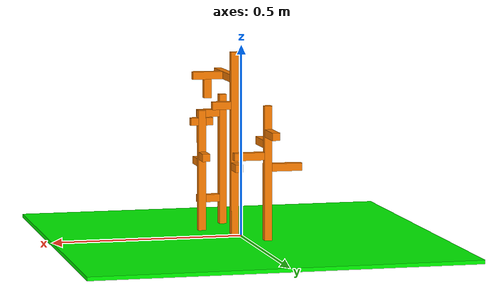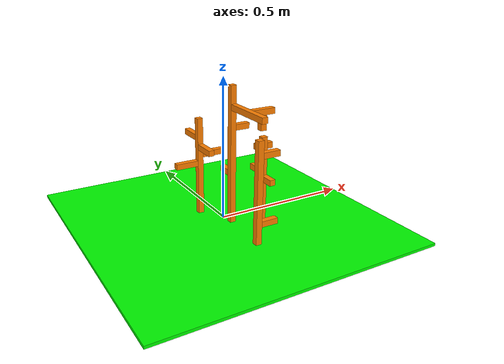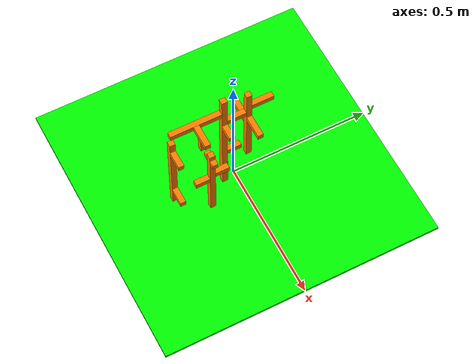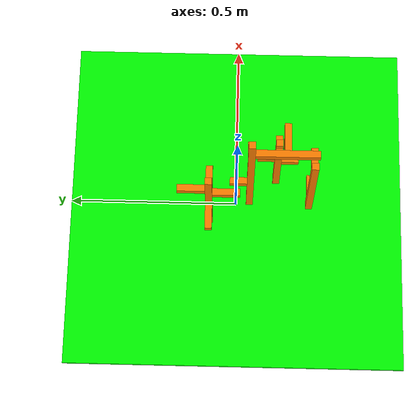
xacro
<?xml version="1.0"?>
<robot xmlns:xacro="http://www.ros.org/wiki/xacro" name="scene_mingruiyu_0">
  <xacro:property name="PI" value="3.1415926535897931" />

  <!-- Include statements for macros -->
  <xacro:include filename="square_pole_macro.xacro"/>

  <!-- GROUND PLANE -->
  <link name="ground_plane">
    <visual>
      <geometry>
        <box size="1 1 0.01"/>
      </geometry>
      <origin xyz="0 0 -0.005" rpy="0 0 0"/>
      <material name="green"/>
    </visual>
    <collision>
      <geometry>
        <box size="1 1 0.01"/>
      </geometry>
      <origin xyz="0 0 -0.005" rpy="0 0 0"/>
    </collision>
  </link>

  <!-- OBSTACLES (created from square poles) -->

  <!-- ====================== POLE 1 : BEGIN ====================== -->
  <!-- MAIN SHAFT -->
  <!-- Creted link has the name: prefix+"_root_link" -->
  <xacro:square_pole prefix="pole_1" parent_link="ground_plane" length="0.35" thickness="0.02">
    <origin xyz="0.0 -0.22 0.0" rpy="0 0 0"/>
  </xacro:square_pole>

  <!-- ATTACHMENT 1. TOWARDS +X AXIS  -->
  <!-- Creted link has the name: prefix+"_root_link" -->
  <xacro:square_pole prefix="pole_1_attachment_1" parent_link="pole_1_root_link" length="0.06" thickness="0.02">
    <origin xyz="0.01 0.0 0.30" rpy="${PI/2.0} 0 ${PI/2.0}"/>
  </xacro:square_pole>

  <!-- ATTACHMENT 2. TOWARDS +X AXIS  -->
  <!-- Creted link has the name: prefix+"_root_link" -->
  <xacro:square_pole prefix="pole_1_attachment_2" parent_link="pole_1_root_link" length="0.06" thickness="0.02">
    <origin xyz="0.01 0.0 0.07" rpy="${PI/2.0} 0 ${PI/2.0}"/>
  </xacro:square_pole>
  <!-- ====================== POLE 1 : END ====================== -->

  <!-- ====================== POLE 2 : BEGIN ====================== -->
  <!-- MAIN SHAFT -->
  <!-- Creted link has the name: prefix+"_root_link" -->
  <xacro:square_pole prefix="pole_2" parent_link="ground_plane" length="0.32" thickness="0.02">
    <origin xyz="0.08 -0.12 0.0" rpy="0 0 0"/>
  </xacro:square_pole>

  <!-- ATTACHMENT 1. TOWARDS +X AXIS  -->
  <!-- Creted link has the name: prefix+"_root_link" -->
  <xacro:square_pole prefix="pole_2_attachment_1" parent_link="pole_2_root_link" length="0.02" thickness="0.02">
    <origin xyz="0.01 0.0 0.29" rpy="${PI/2.0} 0 ${PI/2.0}"/>
  </xacro:square_pole>

  <!-- ATTACHMENT 2. TOWARDS -X AXIS  -->
  <!-- Creted link has the name: prefix+"_root_link" -->
  <xacro:square_pole prefix="pole_2_attachment_2" parent_link="pole_2_root_link" length="0.02" thickness="0.02">
    <origin xyz="-0.01 0.0 0.29" rpy="${PI/2.0} 0 ${3*PI/2.0}"/>
  </xacro:square_pole>

  <!-- ATTACHMENT 3. TOWARDS +Y AXIS  -->
  <!-- Creted link has the name: prefix+"_root_link" -->
  <xacro:square_pole prefix="pole_2_attachment_3" parent_link="pole_2_root_link" length="0.05" thickness="0.02">
    <origin xyz="0.0 0.01 0.20" rpy="${PI/2.0} 0 ${PI}"/>
  </xacro:square_pole>

  <!-- ATTACHMENT 4. TOWARDS -Y AXIS  -->
  <!-- Creted link has the name: prefix+"_root_link" -->
  <xacro:square_pole prefix="pole_2_attachment_4" parent_link="pole_2_root_link" length="0.05" thickness="0.02">
    <origin xyz="0 -0.01 0.18" rpy="${PI/2.0} 0 0"/>
  </xacro:square_pole>
  <!-- ====================== POLE 2 : END ====================== -->

  <!-- ====================== POLE 3 : BEGIN ====================== -->
  <!-- MAIN SHAFT -->
  <!-- Creted link has the name: prefix+"_root_link" -->
  <xacro:square_pole prefix="pole_3" parent_link="ground_plane" length="0.48" thickness="0.02">
    <origin xyz="0.01 -0.04 0.0" rpy="0 0 0"/>
  </xacro:square_pole>

  <!-- ATTACHMENT 1. TOWARDS -Y AXIS  -->
  <!-- Creted link has the name: prefix+"_root_link" -->
  <xacro:square_pole prefix="pole_3_attachment_1" parent_link="pole_3_root_link" length="0.18" thickness="0.02">
    <origin xyz="0 -0.01 0.41" rpy="${PI/2.0} 0 0"/>
  </xacro:square_pole>

  <!-- ATTACHMENT 1.1 TOWARDS +X AXIS wrt to ATTACHMENT 1 -->
  <!-- Creted link has the name: prefix+"_root_link" -->
  <xacro:square_pole prefix="pole_3_attachment_1_1" parent_link="pole_3_attachment_1_root_link" length="0.08" thickness="0.02">
    <origin xyz="0.01 0.0 0.09" rpy="0 ${PI/2.0} 0"/>
  </xacro:square_pole>

  <!-- ATTACHMENT 1.1.1 TOWARDS -Y AXIS wrt to ATTACHMENT 1.1 -->
  <!-- Creted link has the name: prefix+"_root_link" -->
  <xacro:square_pole prefix="pole_3_attachment_1_1_1" parent_link="pole_3_attachment_1_1_root_link" length="0.05" thickness="0.02">
    <origin xyz="0 -0.01 0.04" rpy="${PI/2.0} 0 0"/>
  </xacro:square_pole>

  <!-- ATTACHMENT 2. TOWARDS +X AXIS -->
  <!-- Creted link has the name: prefix+"_root_link" -->
  <xacro:square_pole prefix="pole_3_attachment_2" parent_link="pole_3_root_link" length="0.05" thickness="0.02">
    <origin xyz="0.01 0.0 0.34" rpy="${PI/2.0} 0 ${PI/2.0}"/>
  </xacro:square_pole>

  <!-- ATTACHMENT 3. TOWARDS +Y AXIS  -->
  <!-- Creted link has the name: prefix+"_root_link" -->
  <xacro:square_pole prefix="pole_3_attachment_3" parent_link="pole_3_root_link" length="0.05" thickness="0.02">
    <origin xyz="0.0 0.01 0.18" rpy="${PI/2.0} 0 ${PI}"/>
  </xacro:square_pole>
  <!-- ====================== POLE 3 : END ====================== -->

  <!-- ====================== POLE 4 : BEGIN ====================== -->
  <!-- MAIN SHAFT -->
  <!-- Creted link has the name: prefix+"_root_link" -->
  <xacro:square_pole prefix="pole_4" parent_link="ground_plane" length="0.35" thickness="0.02">
    <origin xyz="-0.05 0.08 0.0" rpy="0 0 0"/>
  </xacro:square_pole>

  <!-- ATTACHMENT 1. TOWARDS -Y AXIS  -->
  <!-- Creted link has the name: prefix+"_root_link" -->
  <xacro:square_pole prefix="pole_4_attachment_1" parent_link="pole_4_root_link" length="0.08" thickness="0.02">
    <origin xyz="0 -0.01 0.25" rpy="${PI/2.0} 0 0"/>
  </xacro:square_pole>

  <!-- ATTACHMENT 2. TOWARDS +X AXIS -->
  <!-- Creted link has the name: prefix+"_root_link" -->
  <xacro:square_pole prefix="pole_4_attachment_2" parent_link="pole_4_root_link" length="0.08" thickness="0.02">
    <origin xyz="0.01 0.0 0.22" rpy="${PI/2.0} 0 ${PI/2.0}"/>
  </xacro:square_pole>

  <!-- ATTACHMENT 3. TOWARDS +Y AXIS  -->
  <!-- Creted link has the name: prefix+"_root_link" -->
  <xacro:square_pole prefix="pole_4_attachment_3" parent_link="pole_4_root_link" length="0.08" thickness="0.02">
    <origin xyz="0.0 0.01 0.28" rpy="${PI/2.0} 0 ${PI}"/>
  </xacro:square_pole>

  <!-- ATTACHMENT 4. TOWARDS -X AXIS -->
  <!-- Creted link has the name: prefix+"_root_link" -->
  <xacro:square_pole prefix="pole_4_attachment_4" parent_link="pole_4_root_link" length="0.08" thickness="0.02">
    <origin xyz="-0.01 0.0 0.19" rpy="${PI/2.0} 0 ${3*PI/2.0}"/>
  </xacro:square_pole>
  <!-- ====================== POLE 4 : END ====================== -->

</robot>

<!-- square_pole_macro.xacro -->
<robot xmlns:xacro="http://www.ros.org/wiki/xacro">
    <xacro:include filename="materials.xacro"/>

    <xacro:macro name="square_pole" params="prefix parent_link length thickness *root_pose">
        <link name="${prefix}_root_link">
            <visual>
                <geometry>
                    <box size="${thickness} ${thickness} ${length}"/>
                </geometry>
                <origin xyz="0 0 ${length / 2.0}" rpy="0 0 0"/>
                <material name="orange"/>
            </visual>
            <collision>
                <geometry>
                    <box size="${thickness} ${thickness} ${length}"/>
                </geometry>
                <origin xyz="0 0 ${length / 2.0}" rpy="0 0 0"/>
            </collision>
        </link>

        <joint name="${prefix}_fixture_joint" type="fixed">
            <parent link="${parent_link}"/>
            <child link="${prefix}_root_link" />
            <xacro:insert_block name="root_pose" />
        </joint>

    </xacro:macro>
</robot>

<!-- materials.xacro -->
<robot>
  <material name="dark_gray"><color rgba="0.2 0.2 0.2 1.0" /></material>
  <material name="gray"><color rgba="0.3 0.3 0.3 1.0" /></material>
  <material name="light_gray"><color rgba="0.4 0.4 0.4 1.0" /></material>
  <material name="yellow"><color rgba="0.8 0.8 0.0 1.0" /></material>
  <material name="orange"><color rgba="1.0 0.5 0.0 1.0" /></material>
  <material name="green"><color rgba="0.0 1.0 0.0 1.0" /></material>
  <material name="teal"><color rgba="0.0 1.0 1.0 1.0" /></material>
  <material name="black"><color rgba="0.15 0.15 0.15 1.0" /></material>
</robot>
